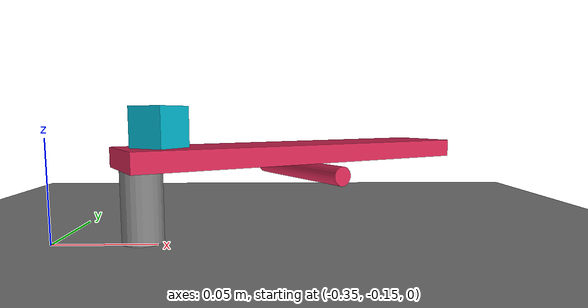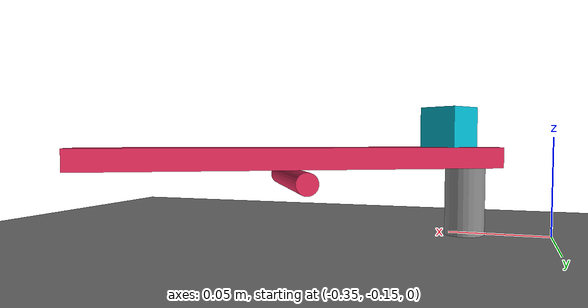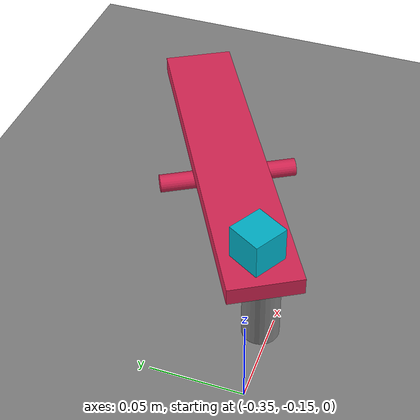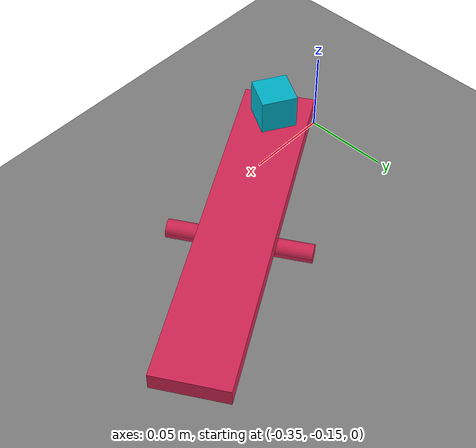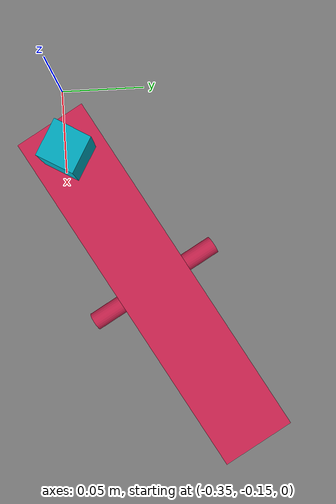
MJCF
<mujoco>
  <!-- This model leads to bad contacts from mjc_BoxBox -->
  <statistic meansize=".01" center="-.3 -.14 .055" extent=".2"/>

  <worldbody>
    <light pos="-.3 -.14 1"/>

    <geom type="plane" size="3 3 .01" pos="-0.025 -0.295  0"/>

    <body pos="-.23 -.1 0" euler="0 0 30">
      <geom type="cylinder" size=".01 .0175" pos="-.09 0 .0175"/>
      <body pos="0 0 .03">
        <joint axis="0 1 0"/>
        <geom type="cylinder" size=".005 .039" zaxis="0 1 0" rgba=".84 .15 .33 1"/>
        <geom type="box" size=".1 .02 .005" pos="0 0 .01" rgba=".84 .15 .33 1"/>
      </body>
    </body>

    <body pos="-.3 -.14 .055" euler="0 0 -30">
      <freejoint/>
      <geom type="box" size=".01 .01 .01" rgba=".0 .7 .79 1"/>
    </body>
  </worldbody>
</mujoco>
